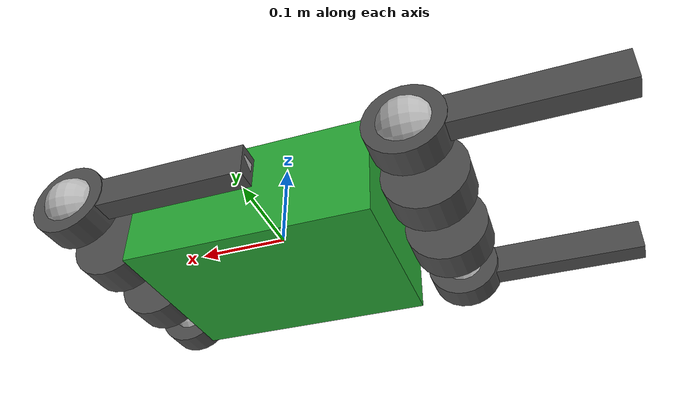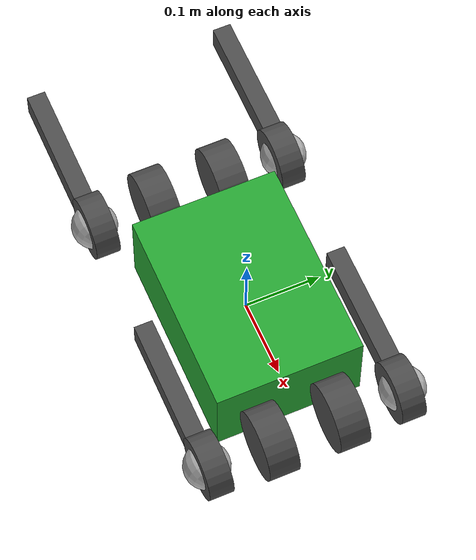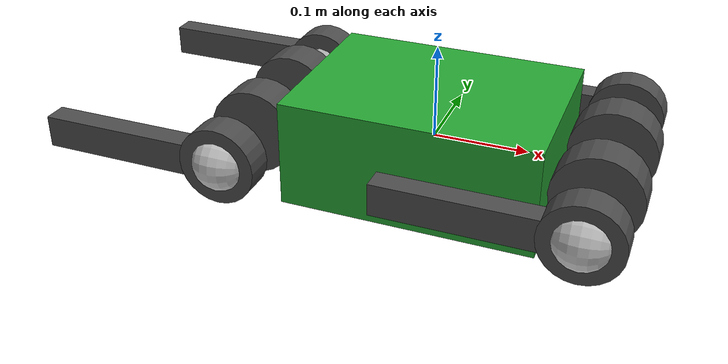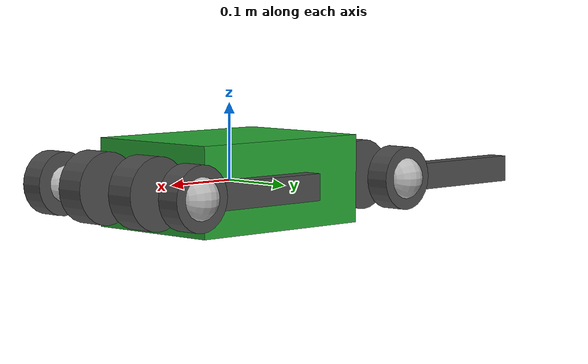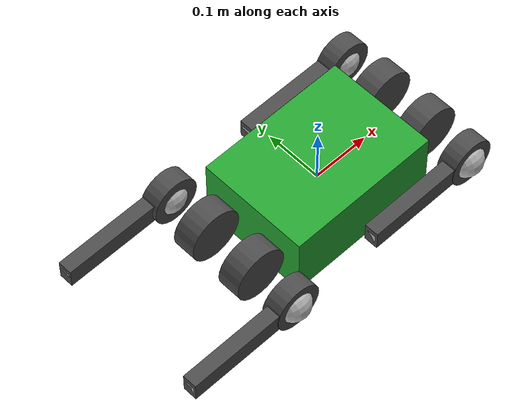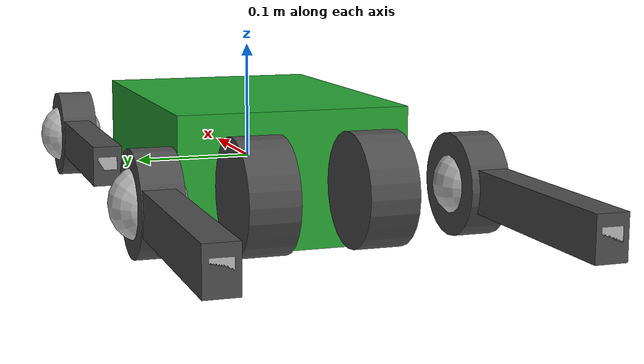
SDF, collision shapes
<sdf version='1.6'>
  <model name='a1_description'>
    <link name='body'>
      <pose frame=''>0 0 0 0 -0 0</pose>
      <inertial>
        <pose frame=''>0 0.004099 -0.0005 0 -0 0</pose>
        <mass>6.001</mass>
        <inertia>
          <ixx>0.0159533</ixx>
          <ixy>-3.66e-05</ixy>
          <ixz>-6.11e-05</ixz>
          <iyy>0.0378999</iyy>
          <iyz>-2.7498e-05</iyz>
          <izz>0.0457542</izz>
        </inertia>
      </inertial>
      <collision name='body_collision_collision'>
        <pose frame=''>0 0 0 0 -0 0</pose>
        <geometry>
          <box>
            <size>0.267 0.194 0.114</size>
          </box>
        </geometry>
        <surface>
          <contact>
            <ode/>
          </contact>
          <friction>
            <ode/>
          </friction>
        </surface>
      </collision>
      <collision name='body_fixed_joint_lump__imu_link_collision_1'>
        <pose frame=''>0 0 0 0 -0 0</pose>
        <geometry>
          <box>
            <size>0.001 0.001 0.001</size>
          </box>
        </geometry>
        <surface>
          <contact>
            <ode/>
          </contact>
          <friction>
            <ode>
              <mu>0.2</mu>
              <mu2>0.2</mu2>
            </ode>
          </friction>
        </surface>
      </collision>
      <visual name='body_visual'>
        <pose frame=''>0 0 0 0 -0 0</pose>
        <geometry>
          <box>
            <size>0.001 0.001 0.001</size>
          </box>
        </geometry>
        <material>
          <script>
            <name>Gazebo/Green</name>
            <uri>file://media/materials/scripts/gazebo.material</uri>
          </script>
        </material>
      </visual>
      <visual name='body_visual_visual_1'>
        <pose frame=''>0 0 0 0 -0 0</pose>
        <geometry>
          <mesh>
            <scale>1 1 1</scale>
            <uri>model://a1_description/meshes/trunk.dae</uri>
          </mesh>
        </geometry>
        <material>
          <script>
            <name>Gazebo/Green</name>
            <uri>file://media/materials/scripts/gazebo.material</uri>
          </script>
        </material>
      </visual>
      <visual name='body_fixed_joint_lump__imu_link_visual_2'>
        <pose frame=''>0 0 0 0 -0 0</pose>
        <geometry>
          <box>
            <size>0.001 0.001 0.001</size>
          </box>
        </geometry>
        <material>
          <script>
            <name>Gazebo/Red</name>
            <uri>file://media/materials/scripts/gazebo.material</uri>
          </script>
        </material>
      </visual>
      <velocity_decay/>
      <velocity_decay/>
      <velocity_decay/>
      <gravity>1</gravity>
      <sensor name='imu_sensor' type='imu'>
        <always_on>1</always_on>
        <update_rate>1000</update_rate>
        <visualize>1</visualize>
        <topic>__default_topic__</topic>
        <plugin name='imu_plugin' filename='libgazebo_ros_imu_sensor.so'>
          <topicName>trunk_imu</topicName>
          <bodyName>imu_link</bodyName>
          <updateRateHZ>1000.0</updateRateHZ>
          <gaussianNoise>0.0</gaussianNoise>
          <xyzOffset>0 0 0</xyzOffset>
          <rpyOffset>0 0 0</rpyOffset>
          <frameName>imu_link</frameName>
        </plugin>
        <pose frame=''>0 0 0 0 -0 0</pose>
      </sensor>
      <gravity>1</gravity>
      <velocity_decay/>
    </link>
    <link name='hip2'>
      <pose frame=''>0.1805 -0.047 0 0 -0 0</pose>
      <inertial>
        <pose frame=''>-0.003311 -0.000635 3.1e-05 0 -0 0</pose>
        <mass>0.696</mass>
        <inertia>
          <ixx>0.000469246</ixx>
          <ixy>9.409e-06</ixy>
          <ixz>-3.42e-07</ixz>
          <iyy>0.00080749</iyy>
          <iyz>4.66e-07</iyz>
          <izz>0.000552929</izz>
        </inertia>
      </inertial>
      <collision name='hip2_collision_collision'>
        <pose frame=''>0 0 0 1.5708 -0 0</pose>
        <geometry>
          <cylinder>
            <length>0.04</length>
            <radius>0.046</radius>
          </cylinder>
        </geometry>
        <surface>
          <contact>
            <ode/>
          </contact>
          <friction>
            <ode>
              <mu>0.2</mu>
              <mu2>0.2</mu2>
            </ode>
          </friction>
        </surface>
      </collision>
      <collision name='hip2_fixed_joint_lump__thigh_shoulder2_collision_1'>
        <pose frame=''>0 -0.081 0 1.5708 -0 0</pose>
        <geometry>
          <cylinder>
            <length>0.032</length>
            <radius>0.041</radius>
          </cylinder>
        </geometry>
      </collision>
      <visual name='hip2_visual_visual'>
        <pose frame=''>0 0 0 -3.14159 -0 0</pose>
        <geometry>
          <mesh>
            <scale>1 1 1</scale>
            <uri>model://a1_description/meshes/hip.dae</uri>
          </mesh>
        </geometry>
        <material>
          <script>
            <name>Gazebo/DarkGrey</name>
            <uri>file://media/materials/scripts/gazebo.material</uri>
          </script>
        </material>
      </visual>
      <gravity>1</gravity>
      <velocity_decay/>
    </link>
    <joint name='10' type='revolute'>
      <child>hip2</child>
      <parent>body</parent>
      <axis>
        <xyz>1 0 0</xyz>
        <limit>
          <lower>-0.802851</lower>
          <upper>0.802851</upper>
          <effort>33.5</effort>
          <velocity>21</velocity>
        </limit>
        <dynamics>
          <damping>0</damping>
          <friction>0</friction>
          <spring_reference>0</spring_reference>
          <spring_stiffness>0</spring_stiffness>
        </dynamics>
        <use_parent_model_frame>0</use_parent_model_frame>
      </axis>
    </joint>
    <link name='upper2'>
      <pose frame=''>0.1805 -0.1308 0 3.14159 1.57079 3.14159</pose>
      <inertial>
        <pose frame=''>-0.003237 0.022327 -0.027326 0 -0 0</pose>
        <mass>1.013</mass>
        <inertia>
          <ixx>0.00552906</ixx>
          <ixy>-4.825e-06</ixy>
          <ixz>0.000343869</ixz>
          <iyy>0.00513934</iyy>
          <iyz>-2.2448e-05</iyz>
          <izz>0.00136779</izz>
        </inertia>
      </inertial>
      <collision name='upper2_collision_collision'>
        <pose frame=''>0 0 -0.1 3.14159 1.57079 3.14159</pose>
        <geometry>
          <box>
            <size>0.2 0.0245 0.034</size>
          </box>
        </geometry>
        <surface>
          <contact>
            <ode>
              <kp>1e+06</kp>
              <kd>1</kd>
            </ode>
          </contact>
          <friction>
            <ode>
              <mu>0.2</mu>
              <mu2>0.2</mu2>
            </ode>
          </friction>
        </surface>
      </collision>
      <visual name='upper2_visual_visual'>
        <pose frame=''>0 0 0 0 -0 0</pose>
        <geometry>
          <mesh>
            <scale>1 1 1</scale>
            <uri>model://a1_description/meshes/thigh_mirror.dae</uri>
          </mesh>
        </geometry>
        <material>
          <script>
            <name>Gazebo/DarkGrey</name>
            <uri>file://media/materials/scripts/gazebo.material</uri>
          </script>
        </material>
      </visual>
      <gravity>1</gravity>
      <velocity_decay/>
      <self_collide>0</self_collide>
    </link>
    <joint name='4' type='revolute'>
      <child>upper2</child>
      <parent>hip2</parent>
      <axis>
        <xyz>0 -1 0</xyz>
        <limit>
          <lower>-6.28319</lower>
          <upper>6.28319</upper>
          <effort>33.5</effort>
          <velocity>21</velocity>
        </limit>
        <dynamics>
          <damping>0</damping>
          <friction>0</friction>
          <spring_reference>0</spring_reference>
          <spring_stiffness>0</spring_stiffness>
        </dynamics>
        <use_parent_model_frame>0</use_parent_model_frame>
      </axis>
    </joint>
    <link name='lower2'>
      <pose frame=''>-0.0195 -0.1308 -0 3.14159 -1.57079 3.14159</pose>
      <inertial>
        <pose frame=''>0.004727 0 -0.131975 0 -0 0</pose>
        <mass>0.226</mass>
        <inertia>
          <ixx>0.00339757</ixx>
          <ixy>0</ixy>
          <ixz>-0.000167427</ixz>
          <iyy>0.00341544</iyy>
          <iyz>0</iyz>
          <izz>5.58509e-05</izz>
        </inertia>
      </inertial>
      <collision name='lower2_collision_collision'>
        <pose frame=''>0 0 -0.1 3.14159 1.57079 3.14159</pose>
        <geometry>
          <box>
            <size>0.2 0.016 0.016</size>
          </box>
        </geometry>
        <surface>
          <contact>
            <ode/>
          </contact>
          <friction>
            <ode>
              <mu>0.2</mu>
              <mu2>0.2</mu2>
            </ode>
          </friction>
        </surface>
      </collision>
      <collision name='lower2_fixed_joint_lump__toe2_collision_collision_1'>
        <pose frame=''>0 0 -0.2 0 -0 0</pose>
        <geometry>
          <sphere>
            <radius>0.03</radius>
          </sphere>
        </geometry>
        <surface>
          <contact>
            <ode>
              <kp>1e+06</kp>
              <kd>1</kd>
            </ode>
          </contact>
          <friction>
            <ode>
              <mu>0.6</mu>
              <mu2>0.6</mu2>
            </ode>
          </friction>
        </surface>
      </collision>
      <visual name='lower2_visual_visual'>
        <pose frame=''>0 0 0 0 -0 0</pose>
        <geometry>
          <mesh>
            <scale>1 1 1</scale>
            <uri>model://a1_description/meshes/calf.dae</uri>
          </mesh>
        </geometry>
        <material>
          <script>
            <uri>__default__</uri>
            <name>__default__</name>
          </script>
        </material>
      </visual>
      <visual name='lower2_fixed_joint_lump__toe2_visual_visual_1'>
        <pose frame=''>0 0 -0.2 0 -0 0</pose>
        <geometry>
          <sphere>
            <radius>0.02</radius>
          </sphere>
        </geometry>
        <material>
          <script>
            <name>Gazebo/DarkGrey</name>
            <uri>file://media/materials/scripts/gazebo.material</uri>
          </script>
        </material>
      </visual>
      <velocity_decay/>
      <self_collide>0</self_collide>
      <velocity_decay/>
      <sensor name='toe2_contact' type='contact'>
        <plugin name='toe2_plugin' filename='libgazebo_ros_bumper.so'>
          <alwaysOn>1</alwaysOn>
          <updateRate>500</updateRate>
          <bumperTopicName>gazebo/toe2_contact_state</bumperTopicName>
          <frameName>world</frameName>
        </plugin>
        <contact>
          <collision>lower2_collision_toe2</collision>
          <topic>__default_topic__</topic>
        </contact>
        <update_rate>500</update_rate>
        <pose frame=''>0 0 -0.2 0 -0 0</pose>
      </sensor>
      <gravity>1</gravity>
      <velocity_decay/>
      <self_collide>0</self_collide>
    </link>
    <joint name='5' type='revolute'>
      <child>lower2</child>
      <parent>upper2</parent>
      <axis>
        <xyz>0 1 0</xyz>
        <limit>
          <lower>-6.28319</lower>
          <upper>6.28319</upper>
          <effort>33.5</effort>
          <velocity>21</velocity>
        </limit>
        <dynamics>
          <damping>0</damping>
          <friction>0</friction>
          <spring_reference>0</spring_reference>
          <spring_stiffness>0</spring_stiffness>
        </dynamics>
        <use_parent_model_frame>0</use_parent_model_frame>
      </axis>
    </joint>
    <link name='hip3'>
      <pose frame=''>-0.1805 -0.047 0 0 -0 0</pose>
      <inertial>
        <pose frame=''>0.003311 -0.000635 3.1e-05 0 -0 0</pose>
        <mass>0.696</mass>
        <inertia>
          <ixx>0.000469246</ixx>
          <ixy>-9.409e-06</ixy>
          <ixz>3.42e-07</ixz>
          <iyy>0.00080749</iyy>
          <iyz>4.66e-07</iyz>
          <izz>0.000552929</izz>
        </inertia>
      </inertial>
      <collision name='hip3_collision_collision'>
        <pose frame=''>0 0 0 1.5708 -0 0</pose>
        <geometry>
          <cylinder>
            <length>0.04</length>
            <radius>0.046</radius>
          </cylinder>
        </geometry>
        <surface>
          <contact>
            <ode/>
          </contact>
          <friction>
            <ode>
              <mu>0.2</mu>
              <mu2>0.2</mu2>
            </ode>
          </friction>
        </surface>
      </collision>
      <collision name='hip3_fixed_joint_lump__thigh_shoulder3_collision_1'>
        <pose frame=''>0 -0.081 0 1.5708 -0 0</pose>
        <geometry>
          <cylinder>
            <length>0.032</length>
            <radius>0.041</radius>
          </cylinder>
        </geometry>
      </collision>
      <visual name='hip3_visual_visual'>
        <pose frame=''>0 0 0 0 -0 3.14159</pose>
        <geometry>
          <mesh>
            <scale>1 1 1</scale>
            <uri>model://a1_description/meshes/hip.dae</uri>
          </mesh>
        </geometry>
        <material>
          <script>
            <name>Gazebo/DarkGrey</name>
            <uri>file://media/materials/scripts/gazebo.material</uri>
          </script>
        </material>
      </visual>
      <gravity>1</gravity>
      <velocity_decay/>
    </link>
    <joint name='11' type='revolute'>
      <child>hip3</child>
      <parent>body</parent>
      <axis>
        <xyz>1 0 0</xyz>
        <limit>
          <lower>-0.802851</lower>
          <upper>0.802851</upper>
          <effort>33.5</effort>
          <velocity>21</velocity>
        </limit>
        <dynamics>
          <damping>0</damping>
          <friction>0</friction>
          <spring_reference>0</spring_reference>
          <spring_stiffness>0</spring_stiffness>
        </dynamics>
        <use_parent_model_frame>0</use_parent_model_frame>
      </axis>
    </joint>
    <link name='upper3'>
      <pose frame=''>-0.1805 -0.1308 0 3.14159 1.57079 3.14159</pose>
      <inertial>
        <pose frame=''>-0.003237 0.022327 -0.027326 0 -0 0</pose>
        <mass>1.013</mass>
        <inertia>
          <ixx>0.00552906</ixx>
          <ixy>-4.825e-06</ixy>
          <ixz>0.000343869</ixz>
          <iyy>0.00513934</iyy>
          <iyz>-2.2448e-05</iyz>
          <izz>0.00136779</izz>
        </inertia>
      </inertial>
      <collision name='upper3_collision_collision'>
        <pose frame=''>0 0 -0.1 3.14159 1.57079 3.14159</pose>
        <geometry>
          <box>
            <size>0.2 0.0245 0.034</size>
          </box>
        </geometry>
        <surface>
          <contact>
            <ode>
              <kp>1e+06</kp>
              <kd>1</kd>
            </ode>
          </contact>
          <friction>
            <ode>
              <mu>0.2</mu>
              <mu2>0.2</mu2>
            </ode>
          </friction>
        </surface>
      </collision>
      <visual name='upper3_visual_visual'>
        <pose frame=''>0 0 0 0 -0 0</pose>
        <geometry>
          <mesh>
            <scale>1 1 1</scale>
            <uri>model://a1_description/meshes/thigh_mirror.dae</uri>
          </mesh>
        </geometry>
        <material>
          <script>
            <name>Gazebo/DarkGrey</name>
            <uri>file://media/materials/scripts/gazebo.material</uri>
          </script>
        </material>
      </visual>
      <gravity>1</gravity>
      <velocity_decay/>
      <self_collide>0</self_collide>
    </link>
    <joint name='6' type='revolute'>
      <child>upper3</child>
      <parent>hip3</parent>
      <axis>
        <xyz>0 -1 0</xyz>
        <limit>
          <lower>-6.28319</lower>
          <upper>6.28319</upper>
          <effort>33.5</effort>
          <velocity>21</velocity>
        </limit>
        <dynamics>
          <damping>0</damping>
          <friction>0</friction>
          <spring_reference>0</spring_reference>
          <spring_stiffness>0</spring_stiffness>
        </dynamics>
        <use_parent_model_frame>0</use_parent_model_frame>
      </axis>
    </joint>
    <link name='lower3'>
      <pose frame=''>-0.3805 -0.1308 -0 3.14159 -1.57079 3.14159</pose>
      <inertial>
        <pose frame=''>0.004727 0 -0.131975 0 -0 0</pose>
        <mass>0.226</mass>
        <inertia>
          <ixx>0.00339757</ixx>
          <ixy>0</ixy>
          <ixz>-0.000167427</ixz>
          <iyy>0.00341544</iyy>
          <iyz>0</iyz>
          <izz>5.58509e-05</izz>
        </inertia>
      </inertial>
      <collision name='lower3_collision_collision'>
        <pose frame=''>0 0 -0.1 3.14159 1.57079 3.14159</pose>
        <geometry>
          <box>
            <size>0.2 0.016 0.016</size>
          </box>
        </geometry>
        <surface>
          <contact>
            <ode/>
          </contact>
          <friction>
            <ode>
              <mu>0.2</mu>
              <mu2>0.2</mu2>
            </ode>
          </friction>
        </surface>
      </collision>
      <collision name='lower3_fixed_joint_lump__toe3_collision_collision_1'>
        <pose frame=''>0 0 -0.2 0 -0 0</pose>
        <geometry>
          <sphere>
            <radius>0.03</radius>
          </sphere>
        </geometry>
        <surface>
          <contact>
            <ode>
              <kp>1e+06</kp>
              <kd>1</kd>
            </ode>
          </contact>
          <friction>
            <ode>
              <mu>0.6</mu>
              <mu2>0.6</mu2>
            </ode>
          </friction>
        </surface>
      </collision>
      <visual name='lower3_visual_visual'>
        <pose frame=''>0 0 0 0 -0 0</pose>
        <geometry>
          <mesh>
            <scale>1 1 1</scale>
            <uri>model://a1_description/meshes/calf.dae</uri>
          </mesh>
        </geometry>
        <material>
          <script>
            <uri>__default__</uri>
            <name>__default__</name>
          </script>
        </material>
      </visual>
      <visual name='lower3_fixed_joint_lump__toe3_visual_visual_1'>
        <pose frame=''>0 0 -0.2 0 -0 0</pose>
        <geometry>
          <sphere>
            <radius>0.02</radius>
          </sphere>
        </geometry>
        <material>
          <script>
            <name>Gazebo/DarkGrey</name>
            <uri>file://media/materials/scripts/gazebo.material</uri>
          </script>
        </material>
      </visual>
      <velocity_decay/>
      <self_collide>0</self_collide>
      <velocity_decay/>
      <sensor name='toe3_contact' type='contact'>
        <plugin name='toe3_plugin' filename='libgazebo_ros_bumper.so'>
          <alwaysOn>1</alwaysOn>
          <updateRate>500</updateRate>
          <bumperTopicName>gazebo/toe3_contact_state</bumperTopicName>
          <frameName>world</frameName>
        </plugin>
        <contact>
          <collision>lower3_collision_toe3</collision>
          <topic>__default_topic__</topic>
        </contact>
        <update_rate>500</update_rate>
        <pose frame=''>0 0 -0.2 0 -0 0</pose>
      </sensor>
      <gravity>1</gravity>
      <velocity_decay/>
      <self_collide>0</self_collide>
    </link>
    <joint name='7' type='revolute'>
      <child>lower3</child>
      <parent>upper3</parent>
      <axis>
        <xyz>0 1 0</xyz>
        <limit>
          <lower>-6.28319</lower>
          <upper>6.28319</upper>
          <effort>33.5</effort>
          <velocity>21</velocity>
        </limit>
        <dynamics>
          <damping>0</damping>
          <friction>0</friction>
          <spring_reference>0</spring_reference>
          <spring_stiffness>0</spring_stiffness>
        </dynamics>
        <use_parent_model_frame>0</use_parent_model_frame>
      </axis>
    </joint>
    <link name='hip0'>
      <pose frame=''>0.1805 0.047 0 0 -0 0</pose>
      <inertial>
        <pose frame=''>-0.003311 0.000635 3.1e-05 0 -0 0</pose>
        <mass>0.696</mass>
        <inertia>
          <ixx>0.000469246</ixx>
          <ixy>-9.409e-06</ixy>
          <ixz>-3.42e-07</ixz>
          <iyy>0.00080749</iyy>
          <iyz>-4.66e-07</iyz>
          <izz>0.000552929</izz>
        </inertia>
      </inertial>
      <collision name='hip0_collision_collision'>
        <pose frame=''>0 0 0 1.5708 -0 0</pose>
        <geometry>
          <cylinder>
            <length>0.04</length>
            <radius>0.046</radius>
          </cylinder>
        </geometry>
        <surface>
          <contact>
            <ode/>
          </contact>
          <friction>
            <ode>
              <mu>0.2</mu>
              <mu2>0.2</mu2>
            </ode>
          </friction>
        </surface>
      </collision>
      <collision name='hip0_fixed_joint_lump__thigh_shoulder0_collision_1'>
        <pose frame=''>0 0.081 0 1.5708 -0 0</pose>
        <geometry>
          <cylinder>
            <length>0.032</length>
            <radius>0.041</radius>
          </cylinder>
        </geometry>
      </collision>
      <visual name='hip0_visual_visual'>
        <pose frame=''>0 0 0 0 -0 0</pose>
        <geometry>
          <mesh>
            <scale>1 1 1</scale>
            <uri>model://a1_description/meshes/hip.dae</uri>
          </mesh>
        </geometry>
        <material>
          <script>
            <name>Gazebo/DarkGrey</name>
            <uri>file://media/materials/scripts/gazebo.material</uri>
          </script>
        </material>
      </visual>
      <gravity>1</gravity>
      <velocity_decay/>
    </link>
    <joint name='8' type='revolute'>
      <child>hip0</child>
      <parent>body</parent>
      <axis>
        <xyz>1 0 0</xyz>
        <limit>
          <lower>-0.802851</lower>
          <upper>0.802851</upper>
          <effort>33.5</effort>
          <velocity>21</velocity>
        </limit>
        <dynamics>
          <damping>0</damping>
          <friction>0</friction>
          <spring_reference>0</spring_reference>
          <spring_stiffness>0</spring_stiffness>
        </dynamics>
        <use_parent_model_frame>0</use_parent_model_frame>
      </axis>
    </joint>
    <link name='upper0'>
      <pose frame=''>0.1805 0.1308 0 3.14159 1.57079 3.14159</pose>
      <inertial>
        <pose frame=''>-0.003237 -0.022327 -0.027326 0 -0 0</pose>
        <mass>1.013</mass>
        <inertia>
          <ixx>0.00552906</ixx>
          <ixy>4.825e-06</ixy>
          <ixz>0.000343869</ixz>
          <iyy>0.00513934</iyy>
          <iyz>2.2448e-05</iyz>
          <izz>0.00136779</izz>
        </inertia>
      </inertial>
      <collision name='upper0_collision_collision'>
        <pose frame=''>0 0 -0.1 3.14159 1.57079 3.14159</pose>
        <geometry>
          <box>
            <size>0.2 0.0245 0.034</size>
          </box>
        </geometry>
        <surface>
          <contact>
            <ode>
              <kp>1e+06</kp>
              <kd>1</kd>
            </ode>
          </contact>
          <friction>
            <ode>
              <mu>0.2</mu>
              <mu2>0.2</mu2>
            </ode>
          </friction>
        </surface>
      </collision>
      <visual name='upper0_visual_visual'>
        <pose frame=''>0 0 0 0 -0 0</pose>
        <geometry>
          <mesh>
            <scale>1 1 1</scale>
            <uri>model://a1_description/meshes/thigh.dae</uri>
          </mesh>
        </geometry>
        <material>
          <script>
            <name>Gazebo/DarkGrey</name>
            <uri>file://media/materials/scripts/gazebo.material</uri>
          </script>
        </material>
      </visual>
      <gravity>1</gravity>
      <velocity_decay/>
      <self_collide>0</self_collide>
    </link>
    <joint name='0' type='revolute'>
      <child>upper0</child>
      <parent>hip0</parent>
      <axis>
        <xyz>0 -1 0</xyz>
        <limit>
          <lower>-6.28319</lower>
          <upper>6.28319</upper>
          <effort>33.5</effort>
          <velocity>21</velocity>
        </limit>
        <dynamics>
          <damping>0</damping>
          <friction>0</friction>
          <spring_reference>0</spring_reference>
          <spring_stiffness>0</spring_stiffness>
        </dynamics>
        <use_parent_model_frame>0</use_parent_model_frame>
      </axis>
    </joint>
    <link name='lower0'>
      <pose frame=''>-0.0195 0.1308 -0 3.14159 -1.57079 3.14159</pose>
      <inertial>
        <pose frame=''>0.004727 0 -0.131975 0 -0 0</pose>
        <mass>0.226</mass>
        <inertia>
          <ixx>0.00339757</ixx>
          <ixy>0</ixy>
          <ixz>-0.000167427</ixz>
          <iyy>0.00341544</iyy>
          <iyz>0</iyz>
          <izz>5.58509e-05</izz>
        </inertia>
      </inertial>
      <collision name='lower0_collision_collision'>
        <pose frame=''>0 0 -0.1 3.14159 1.57079 3.14159</pose>
        <geometry>
          <box>
            <size>0.2 0.016 0.016</size>
          </box>
        </geometry>
        <surface>
          <contact>
            <ode/>
          </contact>
          <friction>
            <ode>
              <mu>0.2</mu>
              <mu2>0.2</mu2>
            </ode>
          </friction>
        </surface>
      </collision>
      <collision name='lower0_fixed_joint_lump__toe0_collision_collision_1'>
        <pose frame=''>0 0 -0.2 0 -0 0</pose>
        <geometry>
          <sphere>
            <radius>0.03</radius>
          </sphere>
        </geometry>
        <surface>
          <contact>
            <ode>
              <kp>1e+06</kp>
              <kd>1</kd>
            </ode>
          </contact>
          <friction>
            <ode>
              <mu>0.6</mu>
              <mu2>0.6</mu2>
            </ode>
          </friction>
        </surface>
      </collision>
      <visual name='lower0_visual_visual'>
        <pose frame=''>0 0 0 0 -0 0</pose>
        <geometry>
          <mesh>
            <scale>1 1 1</scale>
            <uri>model://a1_description/meshes/calf.dae</uri>
          </mesh>
        </geometry>
        <material>
          <script>
            <uri>__default__</uri>
            <name>__default__</name>
          </script>
        </material>
      </visual>
      <visual name='lower0_fixed_joint_lump__toe0_visual_visual_1'>
        <pose frame=''>0 0 -0.2 0 -0 0</pose>
        <geometry>
          <sphere>
            <radius>0.02</radius>
          </sphere>
        </geometry>
        <material>
          <script>
            <name>Gazebo/DarkGrey</name>
            <uri>file://media/materials/scripts/gazebo.material</uri>
          </script>
        </material>
      </visual>
      <velocity_decay/>
      <self_collide>0</self_collide>
      <velocity_decay/>
      <sensor name='toe0_contact' type='contact'>
        <plugin name='toe0_plugin' filename='libgazebo_ros_bumper.so'>
          <alwaysOn>1</alwaysOn>
          <updateRate>500</updateRate>
          <bumperTopicName>gazebo/toe0_contact_state</bumperTopicName>
          <frameName>world</frameName>
        </plugin>
        <contact>
          <collision>lower0_collision_toe0</collision>
          <topic>__default_topic__</topic>
        </contact>
        <update_rate>500</update_rate>
        <pose frame=''>0 0 -0.2 0 -0 0</pose>
      </sensor>
      <gravity>1</gravity>
      <velocity_decay/>
      <self_collide>0</self_collide>
    </link>
    <joint name='1' type='revolute'>
      <child>lower0</child>
      <parent>upper0</parent>
      <axis>
        <xyz>0 1 0</xyz>
        <limit>
          <lower>-6.28319</lower>
          <upper>6.28319</upper>
          <effort>33.5</effort>
          <velocity>21</velocity>
        </limit>
        <dynamics>
          <damping>0</damping>
          <friction>0</friction>
          <spring_reference>0</spring_reference>
          <spring_stiffness>0</spring_stiffness>
        </dynamics>
        <use_parent_model_frame>0</use_parent_model_frame>
      </axis>
    </joint>
    <link name='hip1'>
      <pose frame=''>-0.1805 0.047 0 0 -0 0</pose>
      <inertial>
        <pose frame=''>0.003311 0.000635 3.1e-05 0 -0 0</pose>
        <mass>0.696</mass>
        <inertia>
          <ixx>0.000469246</ixx>
          <ixy>9.409e-06</ixy>
          <ixz>3.42e-07</ixz>
          <iyy>0.00080749</iyy>
          <iyz>-4.66e-07</iyz>
          <izz>0.000552929</izz>
        </inertia>
      </inertial>
      <collision name='hip1_collision_collision'>
        <pose frame=''>0 0 0 1.5708 -0 0</pose>
        <geometry>
          <cylinder>
            <length>0.04</length>
            <radius>0.046</radius>
          </cylinder>
        </geometry>
        <surface>
          <contact>
            <ode/>
          </contact>
          <friction>
            <ode>
              <mu>0.2</mu>
              <mu2>0.2</mu2>
            </ode>
          </friction>
        </surface>
      </collision>
      <collision name='hip1_fixed_joint_lump__thigh_shoulder1_collision_1'>
        <pose frame=''>0 0.081 0 1.5708 -0 0</pose>
        <geometry>
          <cylinder>
            <length>0.032</length>
            <radius>0.041</radius>
          </cylinder>
        </geometry>
      </collision>
      <visual name='hip1_visual_visual'>
        <pose frame=''>0 0 0 3.14159 -0 3.14159</pose>
        <geometry>
          <mesh>
            <scale>1 1 1</scale>
            <uri>model://a1_description/meshes/hip.dae</uri>
          </mesh>
        </geometry>
        <material>
          <script>
            <name>Gazebo/DarkGrey</name>
            <uri>file://media/materials/scripts/gazebo.material</uri>
          </script>
        </material>
      </visual>
      <gravity>1</gravity>
      <velocity_decay/>
    </link>
    <joint name='9' type='revolute'>
      <child>hip1</child>
      <parent>body</parent>
      <axis>
        <xyz>1 0 0</xyz>
        <limit>
          <lower>-0.802851</lower>
          <upper>0.802851</upper>
          <effort>33.5</effort>
          <velocity>21</velocity>
        </limit>
        <dynamics>
          <damping>0</damping>
          <friction>0</friction>
          <spring_reference>0</spring_reference>
          <spring_stiffness>0</spring_stiffness>
        </dynamics>
        <use_parent_model_frame>0</use_parent_model_frame>
      </axis>
    </joint>
    <link name='upper1'>
      <pose frame=''>-0.1805 0.1308 0 3.14159 1.57079 3.14159</pose>
      <inertial>
        <pose frame=''>-0.003237 -0.022327 -0.027326 0 -0 0</pose>
        <mass>1.013</mass>
        <inertia>
          <ixx>0.00552906</ixx>
          <ixy>4.825e-06</ixy>
          <ixz>0.000343869</ixz>
          <iyy>0.00513934</iyy>
          <iyz>2.2448e-05</iyz>
          <izz>0.00136779</izz>
        </inertia>
      </inertial>
      <collision name='upper1_collision_collision'>
        <pose frame=''>0 0 -0.1 3.14159 1.57079 3.14159</pose>
        <geometry>
          <box>
            <size>0.2 0.0245 0.034</size>
          </box>
        </geometry>
        <surface>
          <contact>
            <ode>
              <kp>1e+06</kp>
              <kd>1</kd>
            </ode>
          </contact>
          <friction>
            <ode>
              <mu>0.2</mu>
              <mu2>0.2</mu2>
            </ode>
          </friction>
        </surface>
      </collision>
      <visual name='upper1_visual_visual'>
        <pose frame=''>0 0 0 0 -0 0</pose>
        <geometry>
          <mesh>
            <scale>1 1 1</scale>
            <uri>model://a1_description/meshes/thigh.dae</uri>
          </mesh>
        </geometry>
        <material>
          <script>
            <name>Gazebo/DarkGrey</name>
            <uri>file://media/materials/scripts/gazebo.material</uri>
          </script>
        </material>
      </visual>
      <gravity>1</gravity>
      <velocity_decay/>
      <self_collide>0</self_collide>
    </link>
    <joint name='2' type='revolute'>
      <child>upper1</child>
      <parent>hip1</parent>
      <axis>
        <xyz>0 -1 0</xyz>
        <limit>
          <lower>-6.28319</lower>
          <upper>6.28319</upper>
          <effort>33.5</effort>
          <velocity>21</velocity>
        </limit>
        <dynamics>
          <damping>0</damping>
          <friction>0</friction>
          <spring_reference>0</spring_reference>
          <spring_stiffness>0</spring_stiffness>
        </dynamics>
        <use_parent_model_frame>0</use_parent_model_frame>
      </axis>
    </joint>
    <link name='lower1'>
      <pose frame=''>-0.3805 0.1308 -0 3.14159 -1.57079 3.14159</pose>
      <inertial>
        <pose frame=''>0.004727 0 -0.131975 0 -0 0</pose>
        <mass>0.226</mass>
        <inertia>
          <ixx>0.00339757</ixx>
          <ixy>0</ixy>
          <ixz>-0.000167427</ixz>
          <iyy>0.00341544</iyy>
          <iyz>0</iyz>
          <izz>5.58509e-05</izz>
        </inertia>
      </inertial>
      <collision name='lower1_collision_collision'>
        <pose frame=''>0 0 -0.1 3.14159 1.57079 3.14159</pose>
        <geometry>
          <box>
            <size>0.2 0.016 0.016</size>
          </box>
        </geometry>
        <surface>
          <contact>
            <ode/>
          </contact>
          <friction>
            <ode>
              <mu>0.2</mu>
              <mu2>0.2</mu2>
            </ode>
          </friction>
        </surface>
      </collision>
      <collision name='lower1_fixed_joint_lump__toe1_collision_collision_1'>
        <pose frame=''>0 0 -0.2 0 -0 0</pose>
        <geometry>
          <sphere>
            <radius>0.03</radius>
          </sphere>
        </geometry>
        <surface>
          <contact>
            <ode>
              <kp>1e+06</kp>
              <kd>1</kd>
            </ode>
          </contact>
          <friction>
            <ode>
              <mu>0.6</mu>
              <mu2>0.6</mu2>
            </ode>
          </friction>
        </surface>
      </collision>
      <visual name='lower1_visual_visual'>
        <pose frame=''>0 0 0 0 -0 0</pose>
        <geometry>
          <mesh>
            <scale>1 1 1</scale>
            <uri>model://a1_description/meshes/calf.dae</uri>
          </mesh>
        </geometry>
        <material>
          <script>
            <uri>__default__</uri>
            <name>__default__</name>
          </script>
        </material>
      </visual>
      <visual name='lower1_fixed_joint_lump__toe1_visual_visual_1'>
        <pose frame=''>0 0 -0.2 0 -0 0</pose>
        <geometry>
          <sphere>
            <radius>0.02</radius>
          </sphere>
        </geometry>
        <material>
          <script>
            <name>Gazebo/DarkGrey</name>
            <uri>file://media/materials/scripts/gazebo.material</uri>
          </script>
        </material>
      </visual>
      <velocity_decay/>
      <self_collide>0</self_collide>
      <velocity_decay/>
      <sensor name='toe1_contact' type='contact'>
        <plugin name='toe1_plugin' filename='libgazebo_ros_bumper.so'>
          <alwaysOn>1</alwaysOn>
          <updateRate>500</updateRate>
          <bumperTopicName>gazebo/toe1_contact_state</bumperTopicName>
          <frameName>world</frameName>
        </plugin>
        <contact>
          <collision>lower1_collision_toe1</collision>
          <topic>__default_topic__</topic>
        </contact>
        <update_rate>500</update_rate>
        <pose frame=''>0 0 -0.2 0 -0 0</pose>
      </sensor>
      <gravity>1</gravity>
      <velocity_decay/>
      <self_collide>0</self_collide>
    </link>
    <joint name='3' type='revolute'>
      <child>lower1</child>
      <parent>upper1</parent>
      <axis>
        <xyz>0 1 0</xyz>
        <limit>
          <lower>-6.28319</lower>
          <upper>6.28319</upper>
          <effort>33.5</effort>
          <velocity>21</velocity>
        </limit>
        <dynamics>
          <damping>0</damping>
          <friction>0</friction>
          <spring_reference>0</spring_reference>
          <spring_stiffness>0</spring_stiffness>
        </dynamics>
        <use_parent_model_frame>0</use_parent_model_frame>
      </axis>
    </joint>
    <plugin name='gazebo_ros_control' filename='libgazebo_ros_control.so'>
      <robotNamespace>/a1</robotNamespace>
      <robotSimType>gazebo_ros_control/DefaultRobotHWSim</robotSimType>
    </plugin>
    <plugin name='ground_truth_estimator' filename='libground_truth_estimator.so'>
      <updateRateHZ>500.0</updateRateHZ>
    </plugin>
    <static>0</static>
    <plugin name='gazebo_ros_force' filename='libgazebo_ros_force.so'>
      <topicName>/apply_force/trunk</topicName>
      <bodyName>body</bodyName>
      <xyzOffset>0 0 0</xyzOffset>
      <rpyOffset>0 -0 0</rpyOffset>
    </plugin>
  </model>
</sdf>
